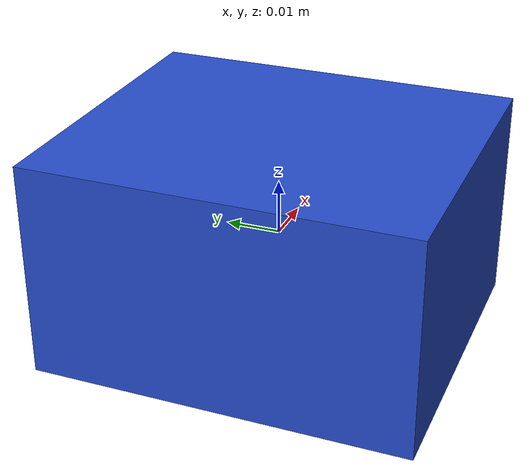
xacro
<?xml version="1.0"?>

<robot xmlns:xacro="http://www.ros.org/wiki/xacro" name="grasp_object">

  <xacro:arg name="grasp_object_dim_x" default="0.06"/>
  <xacro:arg name="grasp_object_dim_y" default="0.07"/>
  <xacro:arg name="grasp_object_dim_z" default="0.04"/>

  <link name="grasp_object">
    <inertial>
      <origin xyz="0 0 0" />
      <mass value="0.2" />
      <inertia  ixx="1" ixy="0"  ixz="0"  iyy="1"  iyz="0"  izz="1"/>
    </inertial>
    <visual>
      <origin xyz="0 0 0"/>
      <geometry>
          <box size="$(arg grasp_object_dim_x) $(arg grasp_object_dim_y) $(arg grasp_object_dim_z)"/>
      </geometry>
    </visual>
    <collision>
      <origin xyz="0 0 0"/>
      <geometry>
        <box size="$(arg grasp_object_dim_x) $(arg grasp_object_dim_y) $(arg grasp_object_dim_z)"/>
      </geometry>
    </collision>
  </link>

  <gazebo reference="grasp_object">
    <mu1>10.0</mu1>
    <mu2>10.0</mu2>
    <maxVel>0.0</maxVel>
    <material>Gazebo/Blue</material>
  </gazebo>

</robot>
